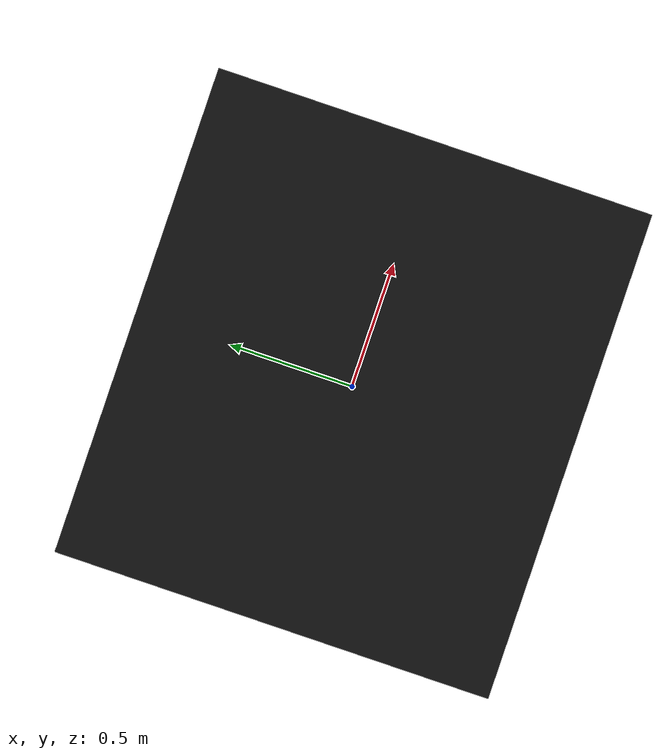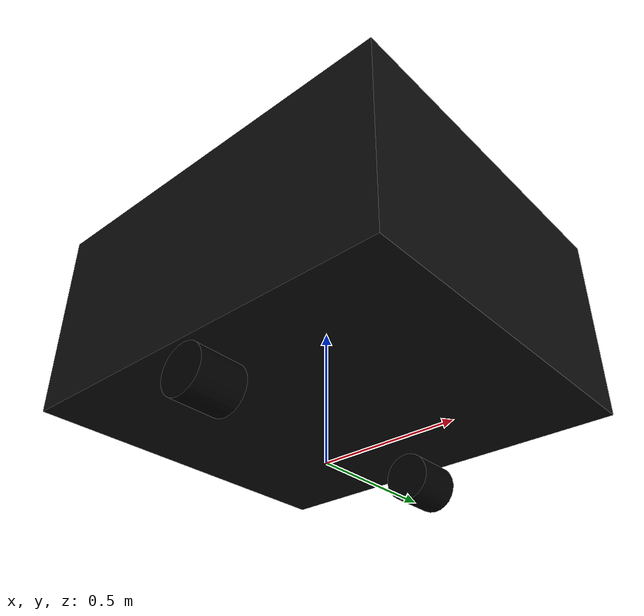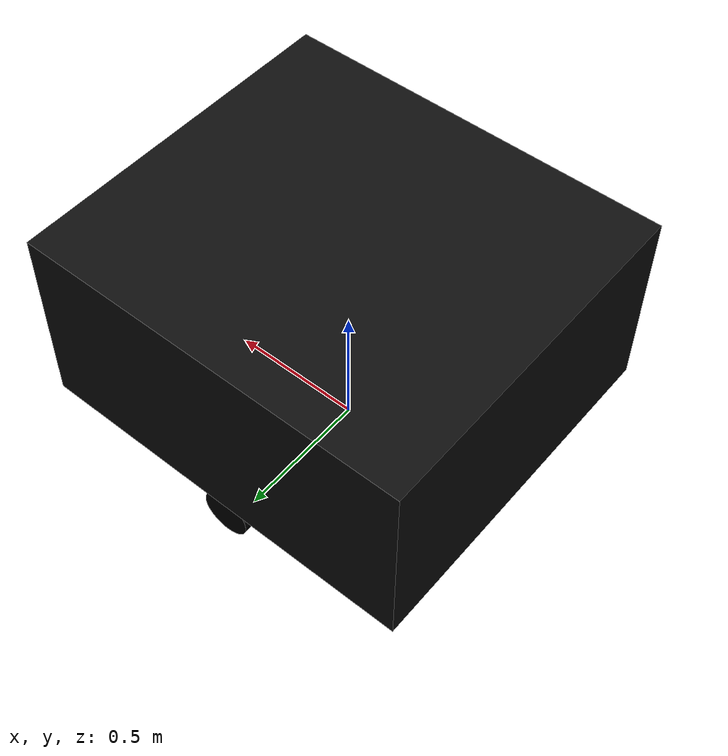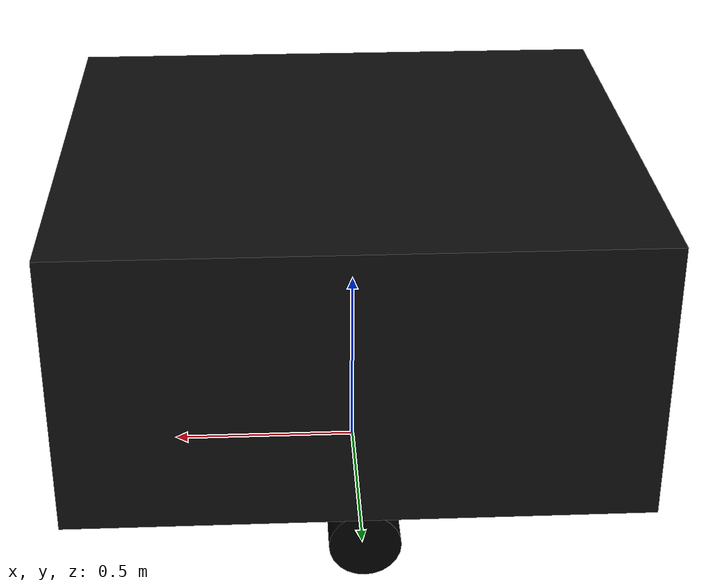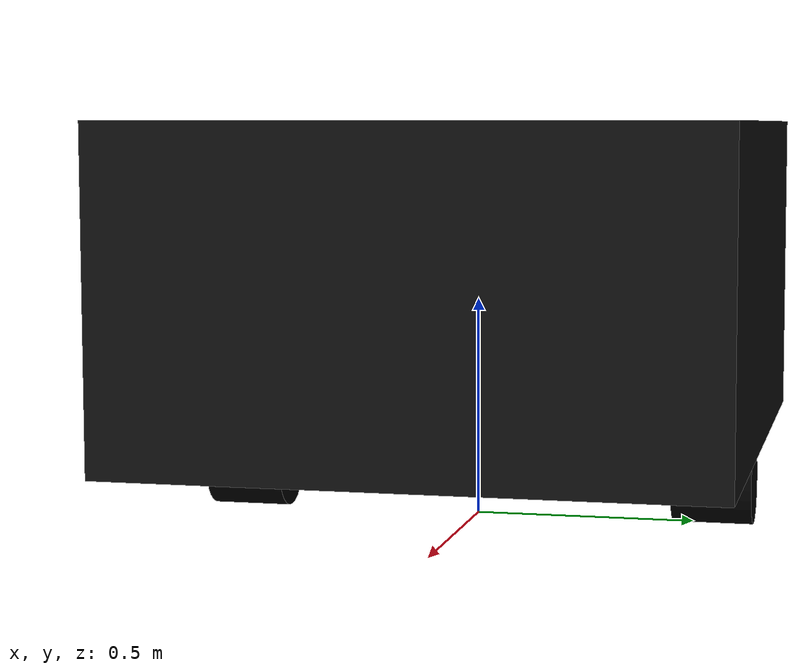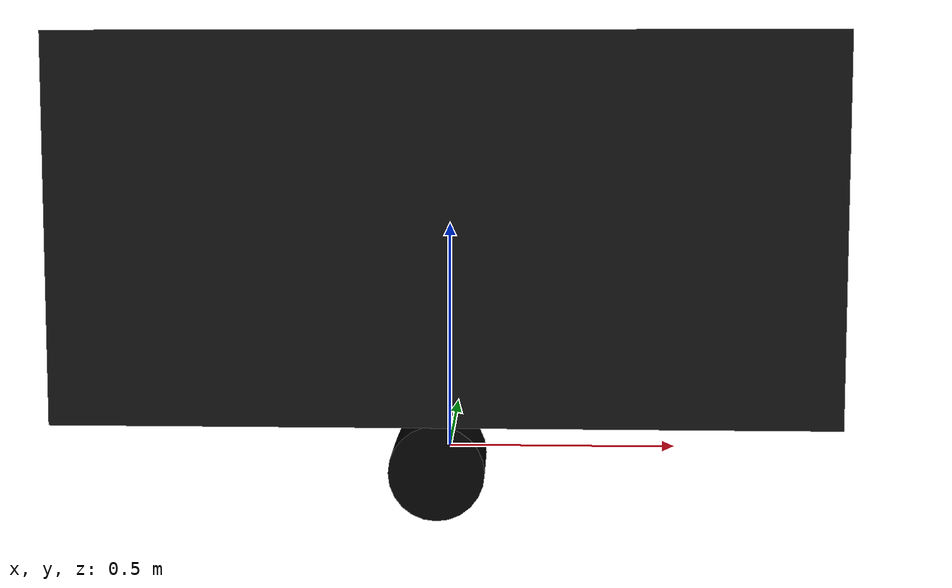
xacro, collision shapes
<?xml version="1.0"?>
<robot name="rovo" xmlns:xacro="http://www.ros.org/wiki/xacro">

  <!-- Properties                                                   -->
  <xacro:property name="pkg"             value="rovo_gz_description"/>

  <xacro:property name="base_mass"       value="50.0"/>
  <xacro:property name="base_x"          value="1.464"/>  <!-- length (X = forward) -->
  <xacro:property name="base_y"          value="1.312"/>  <!-- width  (Y = left)    -->
  <xacro:property name="base_z"          value="0.728"/>  <!-- height above wheel top -->
  <xacro:property name="base_cz"         value="0.544"/>  <!-- collision center z -->

  <xacro:property name="wheel_mass"      value="5.0"/>
  <xacro:property name="wheel_radius"    value="0.09"/>
  <xacro:property name="wheel_length"    value="0.18"/>   <!-- wider for terrain grip -->
  <xacro:property name="wheel_x"         value="0.547"/>  <!-- half-separation -->
  <xacro:property name="wheel_z"         value="0.09"/>   <!-- ground clearance offset -->

  <!-- Macros                                                       -->
  <xacro:macro name="box_inertia" params="m x y z cx:=0 cy:=0 cz:=0">
    <inertial>
      <origin xyz="${cx} ${cy} ${cz}" rpy="0 0 0"/>
      <mass value="${m}"/>
      <inertia
        ixx="${m*(y*y+z*z)/12.0}" ixy="0" ixz="0"
        iyy="${m*(x*x+z*z)/12.0}" iyz="0"
        izz="${m*(x*x+y*y)/12.0}"/>
    </inertial>
  </xacro:macro>

  <xacro:macro name="cyl_inertia" params="m r h">
    <inertial>
      <origin xyz="0 0 0" rpy="0 0 0"/>
      <mass value="${m}"/>
      <inertia
        ixx="${m*(3.0*r*r+h*h)/12.0}" ixy="0" ixz="0"
        iyy="${m*(3.0*r*r+h*h)/12.0}" iyz="0"
        izz="${0.5*m*r*r}"/>
    </inertial>
  </xacro:macro>

  <xacro:macro name="visual_mesh" params="name">
    <visual>
      <origin xyz="0 0 0" rpy="0 0 0"/>
      <geometry>
        <mesh filename="package://${pkg}/meshes/visual/${name}.dae"/>
      </geometry>
    </visual>
  </xacro:macro>

  <xacro:macro name="drive_wheel" params="side reflect">
    <link name="${side}_wheel">
      <visual>
        <origin xyz="0 0 0" rpy="${pi/2} 0 0"/>
        <geometry>
          <cylinder radius="${wheel_radius}" length="${wheel_length}"/>
        </geometry>
        <material name="invisible">
          <color rgba="0 0 0 0"/>
        </material>
      </visual>
      <collision>
        <origin xyz="0 0 0" rpy="${pi/2} 0 0"/>
        <geometry>
          <cylinder radius="${wheel_radius}" length="${wheel_length}"/>
        </geometry>
      </collision>
      <xacro:cyl_inertia m="${wheel_mass}" r="${wheel_radius}" h="${wheel_length}"/>
    </link>

    <joint name="${side}_wheel_joint" type="continuous">
      <parent link="base_link"/>
      <child  link="${side}_wheel"/>
      <origin xyz="0 ${-reflect*wheel_x} ${wheel_z}" rpy="0 0 0"/>
      <axis xyz="0 1 0"/>
      <dynamics damping="10.0" friction="0.5"/>
    </joint>

    <gazebo reference="${side}_wheel">
      <mu1>1.5</mu1>
      <mu2>1.5</mu2>
      <kp>5e5</kp>
      <kd>50.0</kd>
      <minDepth>0.003</minDepth>
      <maxVel>1.0</maxVel>
    </gazebo>
  </xacro:macro>

  <!-- base_footprint (ground projection)                           -->
  <link name="base_footprint"/>

  <joint name="base_footprint_to_base" type="fixed">
    <parent link="base_footprint"/>
    <child  link="base_link"/>
    <origin xyz="0 0 0" rpy="0 0 0"/>
  </joint>

  <!-- base_link: all 21 GLB meshes as visuals + box collision      -->
  <!-- Mesh vertex data is baked at world coords (Z origin=0),     -->
  <!-- so visual origin is offset by -0.46 to undo base_link lift.  -->
  <link name="base_link">

    <!-- 21 visuals — mesh vertex data already in world coords (Z 0.012..0.908) -->
    <xacro:macro name="vis" params="name">
      <visual>
        <origin xyz="0 0 0" rpy="0 0 ${pi/2}"/>
        <geometry>
          <mesh filename="package://${pkg}/meshes/visual/${name}.dae"/>
        </geometry>
      </visual>
    </xacro:macro>

    <xacro:macro name="vis_black" params="name">
      <visual>
        <origin xyz="0 0 0" rpy="0 0 ${pi/2}"/>
        <geometry>
          <mesh filename="package://${pkg}/meshes/visual/${name}.dae"/>
        </geometry>
        <material name="track_black">
          <color rgba="0.05 0.05 0.05 1.0"/>
        </material>
      </visual>
    </xacro:macro>

    <xacro:macro name="vis_sensor" params="name">
      <visual>
        <origin xyz="0 0 0" rpy="0 0 ${pi/2}"/>
        <geometry>
          <mesh filename="package://${pkg}/meshes/visual/${name}.dae"/>
        </geometry>
      </visual>
    </xacro:macro>

    <xacro:vis name="body"/>
    <xacro:vis name="camera_holder"/>
    <xacro:vis name="lightbody"/>
    <xacro:vis name="pipes"/>
    <xacro:vis name="wheel_holder"/>
    <xacro:vis_black name="wheelTrack_new"/>
    <xacro:vis_black name="wheelTrack_new_001"/>

    <!-- Sensor visuals — world-space baked from body_modified.glb -->
    <xacro:vis_sensor name="sensor_IMU_LIdar_GPS_Mini"/>
    <xacro:vis_sensor name="sensor_velodyne_lidar"/>
    <xacro:vis_sensor name="sensor_Realsense_camera"/>
    <xacro:vis_sensor name="sensor_GPS_antenna"/>
    <xacro:vis_sensor name="sensor_Sensor_head_mount"/>

    <xacro:vis name="wl"/>
    <xacro:vis name="wl1"/>
    <xacro:vis name="wl2"/>
    <xacro:vis name="wl3"/>
    <xacro:vis name="wl4"/>
    <xacro:vis name="wl5"/>
    <xacro:vis name="wl6"/>
    <xacro:vis name="wr"/>
    <xacro:vis name="wr1"/>
    <xacro:vis name="wr2"/>
    <xacro:vis name="wr3"/>
    <xacro:vis name="wr4"/>
    <xacro:vis name="wr5"/>
    <xacro:vis name="wr6"/>

    <!-- Chassis collision box -->
    <collision name="chassis_box">
      <origin xyz="0.013 0 0.544" rpy="0 0 0"/>
      <geometry>
        <box size="${base_x} ${base_y} ${base_z}"/>
      </geometry>
    </collision>

    <!-- Skid bars removed: caused teleport-to-spawn in office (solver-eject
         on multi-contact stiffness). Use small forward CoM bias instead. -->

    <!-- 5 mm forward CoM bias → mild predictable forward lean, no jitter.
         Robot rests on wheels with slight forward pitch (~0.5°), stable. -->
    <xacro:box_inertia m="${base_mass}" x="${base_x}" y="${base_y}" z="${base_z}"
                       cx="0.005" cy="0" cz="0.40"/>
  </link>

  <gazebo reference="base_link">
    <mu1>0.05</mu1>
    <mu2>0.05</mu2>
    <kp>5e5</kp>
    <kd>50.0</kd>
    <minDepth>0.003</minDepth>
  </gazebo>

  <!-- Drive wheels (invisible)                                     -->
  <xacro:drive_wheel side="left"  reflect="-1"/>
  <xacro:drive_wheel side="right" reflect="1"/>

  <!-- IMU link                                                     -->
  <link name="phiimu_frame2">
    <inertial>
      <mass value="0.01"/>
      <inertia ixx="1e-6" ixy="0" ixz="0" iyy="1e-6" iyz="0" izz="1e-6"/>
    </inertial>
  </link>
  <joint name="imu_joint" type="fixed">
    <parent link="base_link"/>
    <child  link="phiimu_frame2"/>
    <origin xyz="0.548019 -0.02886 0.829417" rpy="-0.004375 -0.060599 1.610255"/>
  </joint>

  <!-- Velodyne 3D LiDAR                                            -->
  <link name="velodyne">
    <inertial>
      <mass value="0.83"/>
      <inertia ixx="1e-3" ixy="0" ixz="0" iyy="1e-3" iyz="0" izz="1e-3"/>
    </inertial>
  </link>

  <joint name="velodyne_joint" type="fixed">
    <parent link="base_link"/>
    <child  link="velodyne"/>
    <origin xyz="0.475 0 1.05" rpy="0 0 0"/>
  </joint>

  <!-- GPS (single antenna, on top of Velodyne + 2.5 cm)           -->
  <link name="gps_link">
    <inertial>
      <mass value="0.05"/>
      <inertia ixx="1e-6" ixy="0" ixz="0" iyy="1e-6" iyz="0" izz="1e-6"/>
    </inertial>
  </link>

  <joint name="gps_joint" type="fixed">
    <parent link="base_link"/>
    <child  link="gps_link"/>
    <origin xyz="0.475 0 1.11" rpy="0 0 0"/>
  </joint>

  <!-- RealSense Depth Camera                                       -->
  <!-- 7 cm below velodyne centre, 5 cm forward, -10° pitch down   -->
  <!-- x=0.475+0.05=0.525  z=1.05-0.07=0.98  rpy="0 -0.1745 0"   -->
  <link name="realsense_link">
    <inertial>
      <mass value="0.072"/>
      <inertia ixx="1e-5" ixy="0" ixz="0" iyy="1e-5" iyz="0" izz="1e-5"/>
    </inertial>
  </link>

  <joint name="realsense_joint" type="fixed">
    <parent link="base_link"/>
    <child  link="realsense_link"/>
    <origin xyz="0.525 0 0.98" rpy="0 -0.1745 0"/>
  </joint>

  <!-- Gazebo Sim (Harmonic/Ionic) system plugins                   -->
  <gazebo>
    <plugin filename="gz-sim-diff-drive-system"
            name="gz::sim::systems::DiffDrive">
      <left_joint>left_wheel_joint</left_joint>
      <right_joint>right_wheel_joint</right_joint>
      <wheel_separation>${2*wheel_x}</wheel_separation>
      <wheel_radius>${wheel_radius}</wheel_radius>
      <max_linear_acceleration>1.0</max_linear_acceleration>
      <max_angular_velocity>1.0</max_angular_velocity>
      <topic>cmd_vel</topic>
      <odom_topic>odom</odom_topic>
      <tf_topic></tf_topic>
      <frame_id>odom</frame_id>
      <child_frame_id>base_footprint</child_frame_id>
      <odom_publish_frequency>50</odom_publish_frequency>
    </plugin>

    <plugin filename="gz-sim-joint-state-publisher-system"
            name="gz::sim::systems::JointStatePublisher">
      <joint_name>left_wheel_joint</joint_name>
      <joint_name>right_wheel_joint</joint_name>
    </plugin>

    <plugin filename="gz-sim-imu-system"
            name="gz::sim::systems::Imu"/>
  </gazebo>

  <gazebo reference="phiimu_frame2">
    <sensor name="imu_sensor" type="imu">
      <always_on>1</always_on>
      <update_rate>100</update_rate>
      <topic>imu/data2</topic>
      <gz_frame_id>phiimu_frame2</gz_frame_id>
    </sensor>
  </gazebo>

  <gazebo reference="velodyne">
    <sensor name="velodyne_sensor" type="gpu_lidar">
      <always_on>1</always_on>
      <update_rate>10</update_rate>
      <topic>/velodyne_points</topic>
      <gz_frame_id>velodyne</gz_frame_id>
      <lidar>
        <scan>
          <horizontal>
            <samples>1875</samples>
            <resolution>1</resolution>
            <min_angle>-${pi}</min_angle>
            <max_angle>${pi}</max_angle>
          </horizontal>
          <vertical>
            <samples>16</samples>
            <resolution>1</resolution>
            <min_angle>-${15.0*pi/180.0}</min_angle>
            <max_angle>${15.0*pi/180.0}</max_angle>
          </vertical>
        </scan>
        <range>
          <min>0.1</min>
          <max>100.0</max>
          <resolution>0.01</resolution>
        </range>
        <noise>
          <type>gaussian</type>
          <mean>0.0</mean>
          <stddev>0.01</stddev>
        </noise>
      </lidar>
    </sensor>
  </gazebo>

  <gazebo reference="realsense_link">
    <sensor name="realsense_sensor" type="rgbd_camera">
      <always_on>1</always_on>
      <update_rate>30</update_rate>
      <topic>camera/camera</topic>
      <gz_frame_id>realsense_link</gz_frame_id>
      <camera>
        <horizontal_fov>1.5184</horizontal_fov>
        <image>
          <width>640</width>
          <height>480</height>
          <format>RGB_INT8</format>
        </image>
        <clip>
          <near>0.1</near>
          <far>10.0</far>
        </clip>
        <depth_camera>
          <clip><near>0.105</near><far>10.0</far></clip>
        </depth_camera>
      </camera>
    </sensor>
  </gazebo>

  <!-- GPS NavSat -->
  <gazebo reference="gps_link">
    <sensor name="gps_sensor" type="navsat">
      <always_on>1</always_on>
      <update_rate>10</update_rate>
      <topic>gps/fix1</topic>
      <gz_frame_id>gps_link</gz_frame_id>
    </sensor>
  </gazebo>

</robot>
